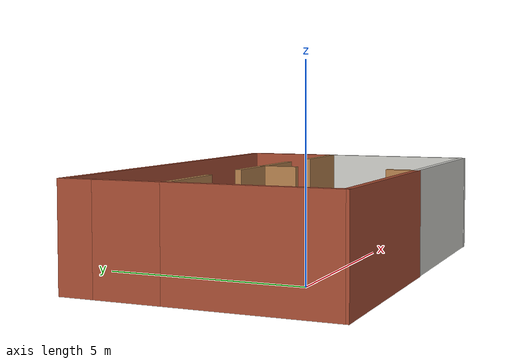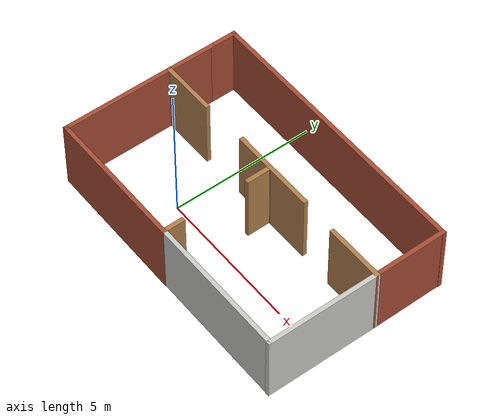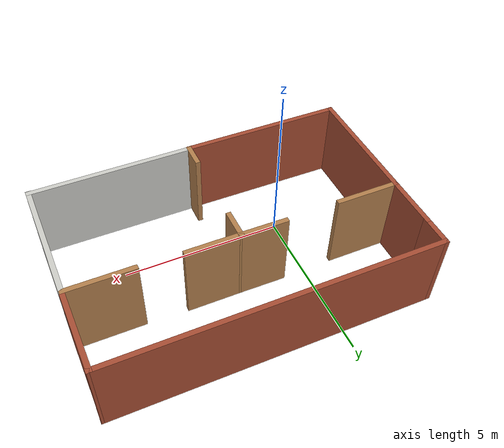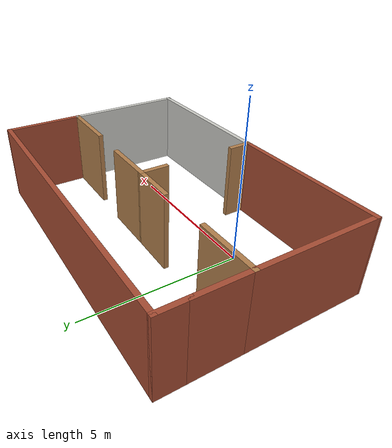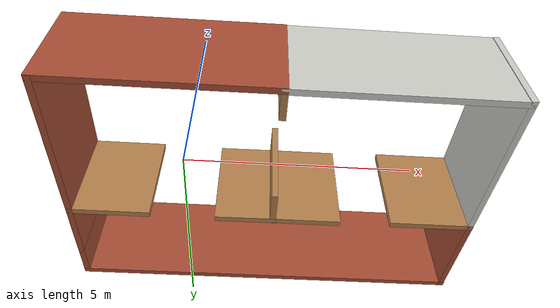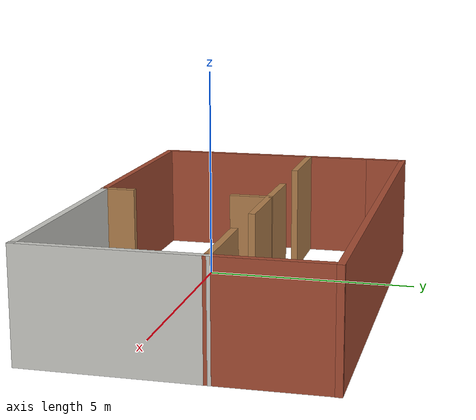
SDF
<?xml version='1.0'?>
<sdf version='1.7'>
  <model name='mieszkanko'>
    <pose>2.08232 1.19182 0 0 -0 0</pose>
    <link name='Wall_14'>
      <collision name='Wall_14_Collision'>
        <geometry>
          <box>
            <size>0.787078 0.15 2.5</size>
          </box>
        </geometry>
        <pose>0 0 1.25 0 -0 0</pose>
      </collision>
      <visual name='Wall_14_Visual'>
        <pose>0 0 1.25 0 -0 0</pose>
        <geometry>
          <box>
            <size>0.787078 0.15 2.5</size>
          </box>
        </geometry>
        <material>
          <script>
            <uri>file://media/materials/scripts/gazebo.material</uri>
            <name>Gazebo/Wood</name>
          </script>
          <ambient>1 1 1 1</ambient>
        </material>
        <meta>
          <layer>0</layer>
        </meta>
      </visual>
      <pose>-0.020932 -2.81207 0 0 -0 1.5708</pose>
    </link>
    <link name='Wall_16'>
      <collision name='Wall_16_Collision'>
        <geometry>
          <box>
            <size>0.96364 0.15 2.5</size>
          </box>
        </geometry>
        <pose>0 0 1.25 0 -0 0</pose>
      </collision>
      <visual name='Wall_16_Visual'>
        <pose>0 0 1.25 0 -0 0</pose>
        <geometry>
          <box>
            <size>0.96364 0.15 2.5</size>
          </box>
        </geometry>
        <material>
          <script>
            <uri>file://media/materials/scripts/gazebo.material</uri>
            <name>Gazebo/Wood</name>
          </script>
          <ambient>1 1 1 1</ambient>
        </material>
        <meta>
          <layer>0</layer>
        </meta>
      </visual>
      <pose>-0.010879 0.331176 0 0 -0 1.57542</pose>
    </link>
    <link name='Wall_22'>
      <collision name='Wall_22_Collision'>
        <geometry>
          <box>
            <size>5.06093 0.15 2.5</size>
          </box>
        </geometry>
        <pose>0 0 1.25 0 -0 0</pose>
      </collision>
      <visual name='Wall_22_Visual'>
        <pose>0 0 1.25 0 -0 0</pose>
        <geometry>
          <box>
            <size>5.06093 0.15 2.5</size>
          </box>
        </geometry>
        <material>
          <script>
            <uri>file://media/materials/scripts/gazebo.material</uri>
            <name>Gazebo/Bricks</name>
          </script>
          <ambient>1 1 1 1</ambient>
        </material>
        <meta>
          <layer>0</layer>
        </meta>
      </visual>
      <pose>-2.47635 -3.13061 0 0 -0 3.1354</pose>
    </link>
    <link name='Wall_23'>
      <collision name='Wall_23_Collision'>
        <geometry>
          <box>
            <size>3.96103 0.15 2.5</size>
          </box>
        </geometry>
        <pose>0 0 1.25 0 -0 0</pose>
      </collision>
      <visual name='Wall_23_Visual'>
        <pose>0 0 1.25 0 -0 0</pose>
        <geometry>
          <box>
            <size>3.96103 0.15 2.5</size>
          </box>
        </geometry>
        <material>
          <script>
            <uri>file://media/materials/scripts/gazebo.material</uri>
            <name>Gazebo/Bricks</name>
          </script>
          <ambient>1 1 1 1</ambient>
        </material>
        <meta>
          <layer>0</layer>
        </meta>
      </visual>
      <pose>-4.93177 -1.19468 0 0 -0 1.5708</pose>
    </link>
    <link name='Wall_31'>
      <collision name='Wall_31_Collision'>
        <geometry>
          <box>
            <size>2 0.15 2.5</size>
          </box>
        </geometry>
        <pose>0 0 1.25 0 -0 0</pose>
      </collision>
      <visual name='Wall_31_Visual'>
        <pose>0 0 1.25 0 -0 0</pose>
        <geometry>
          <box>
            <size>2 0.15 2.5</size>
          </box>
        </geometry>
        <material>
          <script>
            <uri>file://media/materials/scripts/gazebo.material</uri>
            <name>Gazebo/Wood</name>
          </script>
          <ambient>1 1 1 1</ambient>
        </material>
        <meta>
          <layer>0</layer>
        </meta>
      </visual>
      <pose>-4.00677 0.710841 0 0 -0 0</pose>
    </link>
    <link name='Wall_33'>
      <collision name='Wall_33_Collision'>
        <geometry>
          <box>
            <size>1.51329 0.15 2.5</size>
          </box>
        </geometry>
        <pose>0 0 1.25 0 -0 0</pose>
      </collision>
      <visual name='Wall_33_Visual'>
        <pose>0 0 1.25 0 -0 0</pose>
        <geometry>
          <box>
            <size>1.51329 0.15 2.5</size>
          </box>
        </geometry>
        <material>
          <script>
            <uri>file://media/materials/scripts/gazebo.material</uri>
            <name>Gazebo/Wood</name>
          </script>
          <ambient>1 1 1 1</ambient>
        </material>
        <meta>
          <layer>0</layer>
        </meta>
      </visual>
      <pose>-0.679162 0.744604 0 0 -0 3.13189</pose>
    </link>
    <link name='Wall_36'>
      <collision name='Wall_36_Collision'>
        <geometry>
          <box>
            <size>5.09128 0.15 2.5</size>
          </box>
        </geometry>
        <pose>0 0 1.25 0 -0 0</pose>
      </collision>
      <visual name='Wall_36_Visual'>
        <pose>0 0 1.25 0 -0 0</pose>
        <geometry>
          <box>
            <size>5.09128 0.15 2.5</size>
          </box>
        </geometry>
        <material>
          <script>
            <uri>file://media/materials/scripts/gazebo.material</uri>
            <name>Gazebo/CeilingTiled</name>
          </script>
          <ambient>0.760784 0.662745 0.627451 1</ambient>
        </material>
        <meta>
          <layer>0</layer>
        </meta>
      </visual>
      <pose>2.44969 -3.13822 0 0 -0 -0.003078</pose>
    </link>
    <link name='Wall_37'>
      <collision name='Wall_37_Collision'>
        <geometry>
          <box>
            <size>4.00002 0.15 2.5</size>
          </box>
        </geometry>
        <pose>0 0 1.25 0 -0 0</pose>
      </collision>
      <visual name='Wall_37_Visual'>
        <pose>0 0 1.25 0 -0 0</pose>
        <geometry>
          <box>
            <size>4.00002 0.15 2.5</size>
          </box>
        </geometry>
        <material>
          <script>
            <uri>file://media/materials/scripts/gazebo.material</uri>
            <name>Gazebo/CeilingTiled</name>
          </script>
          <ambient>0.760784 0.662745 0.627451 1</ambient>
        </material>
        <meta>
          <layer>0</layer>
        </meta>
      </visual>
      <pose>4.92607 -1.23603 0 0 -0 1.56781</pose>
    </link>
    <link name='Wall_38'>
      <collision name='Wall_38_Collision'>
        <geometry>
          <box>
            <size>2.08754 0.15 2.5</size>
          </box>
        </geometry>
        <pose>0 0 1.25 0 -0 0</pose>
      </collision>
      <visual name='Wall_38_Visual'>
        <pose>0 0 1.25 0 -0 0</pose>
        <geometry>
          <box>
            <size>2.08754 0.15 2.5</size>
          </box>
        </geometry>
        <material>
          <script>
            <uri>file://media/materials/scripts/gazebo.material</uri>
            <name>Gazebo/Wood</name>
          </script>
          <ambient>1 1 1 1</ambient>
        </material>
        <meta>
          <layer>0</layer>
        </meta>
      </visual>
      <pose>3.94784 0.688972 0 0 -0 3.14159</pose>
    </link>
    <link name='Wall_43'>
      <collision name='Wall_43_Collision'>
        <geometry>
          <box>
            <size>1.75376 0.15 2.5</size>
          </box>
        </geometry>
        <pose>0 0 1.25 0 -0 0</pose>
      </collision>
      <visual name='Wall_43_Visual'>
        <pose>0 0 1.25 0 -0 0</pose>
        <geometry>
          <box>
            <size>1.75376 0.15 2.5</size>
          </box>
        </geometry>
        <material>
          <script>
            <uri>file://media/materials/scripts/gazebo.material</uri>
            <name>Gazebo/Wood</name>
          </script>
          <ambient>1 1 1 1</ambient>
        </material>
        <meta>
          <layer>0</layer>
        </meta>
      </visual>
      <pose>0.789121 0.737992 0 0 -0 0</pose>
    </link>
    <link name='Wall_46'>
      <collision name='Wall_46_Collision'>
        <geometry>
          <box>
            <size>1.75 0.15 2.5</size>
          </box>
        </geometry>
        <pose>0 0 1.25 0 -0 0</pose>
      </collision>
      <visual name='Wall_46_Visual'>
        <pose>0 0 1.25 0 -0 0</pose>
        <geometry>
          <box>
            <size>1.75 0.15 2.5</size>
          </box>
        </geometry>
        <material>
          <script>
            <uri>file://media/materials/scripts/gazebo.material</uri>
            <name>Gazebo/Bricks</name>
          </script>
          <ambient>1 1 1 1</ambient>
        </material>
        <meta>
          <layer>0</layer>
        </meta>
      </visual>
      <pose>-4.93177 1.51084 0 0 -0 1.5708</pose>
    </link>
    <link name='Wall_47'>
      <collision name='Wall_47_Collision'>
        <geometry>
          <box>
            <size>1 0.15 2.5</size>
          </box>
        </geometry>
        <pose>0 0 1.25 0 -0 0</pose>
      </collision>
      <visual name='Wall_47_Visual'>
        <pose>0 0 1.25 0 -0 0</pose>
        <geometry>
          <box>
            <size>1 0.15 2.5</size>
          </box>
        </geometry>
        <material>
          <script>
            <uri>file://media/materials/scripts/gazebo.material</uri>
            <name>Gazebo/Bricks</name>
          </script>
          <ambient>1 1 1 1</ambient>
        </material>
        <meta>
          <layer>0</layer>
        </meta>
      </visual>
      <pose>-4.93177 2.73584 0 0 -0 1.5708</pose>
    </link>
    <link name='Wall_48'>
      <collision name='Wall_48_Collision'>
        <geometry>
          <box>
            <size>10.0115 0.15 2.5</size>
          </box>
        </geometry>
        <pose>0 0 1.25 0 -0 0</pose>
      </collision>
      <visual name='Wall_48_Visual'>
        <pose>0 0 1.25 0 -0 0</pose>
        <geometry>
          <box>
            <size>10.0115 0.15 2.5</size>
          </box>
        </geometry>
        <material>
          <script>
            <uri>file://media/materials/scripts/gazebo.material</uri>
            <name>Gazebo/Bricks</name>
          </script>
          <ambient>1 1 1 1</ambient>
        </material>
        <meta>
          <layer>0</layer>
        </meta>
      </visual>
      <pose>-0.001018 3.16084 0 0 -0 0</pose>
    </link>
    <link name='Wall_49'>
      <collision name='Wall_49_Collision'>
        <geometry>
          <box>
            <size>2.62191 0.15 2.5</size>
          </box>
        </geometry>
        <pose>0 0 1.25 0 -0 0</pose>
      </collision>
      <visual name='Wall_49_Visual'>
        <pose>0 0 1.25 0 -0 0</pose>
        <geometry>
          <box>
            <size>2.62191 0.15 2.5</size>
          </box>
        </geometry>
        <material>
          <script>
            <uri>file://media/materials/scripts/gazebo.material</uri>
            <name>Gazebo/Bricks</name>
          </script>
          <ambient>1 1 1 1</ambient>
        </material>
        <meta>
          <layer>0</layer>
        </meta>
      </visual>
      <pose>4.92503 1.92491 0 0 -0 -1.5653</pose>
    </link>
    <static>1</static>
  </model>
</sdf>
